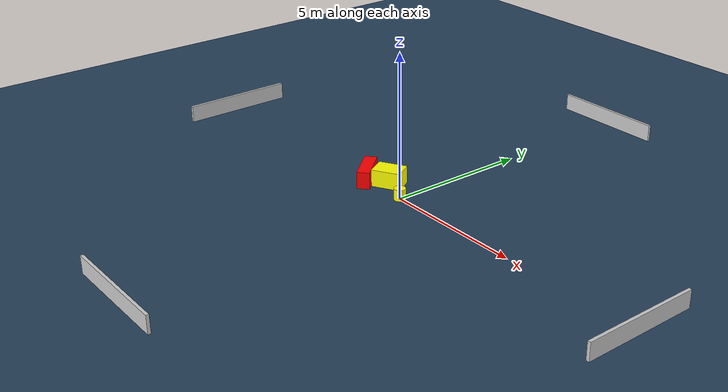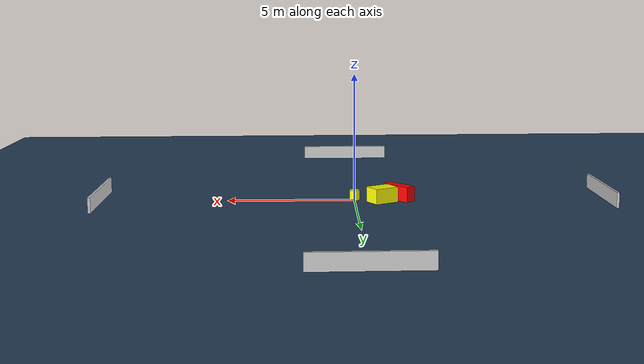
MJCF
<?xml version="1.0" ?>
<mujoco model="generated_environment">
  <option timestep="0.01" integrator="RK4" cone="elliptic"/>
  <default>
    <geom density="1"/>
  </default>
  <asset>
    <texture builtin="gradient" height="3072" name="skybox" rgb1="0.3 0.5 0.7" rgb2="0 0 0" type="skybox" width="512"/>
    <texture builtin="checker" height="300" name="groundplane" rgb1="0.2 0.3 0.4" rgb2="0.1 0.2 0.3" type="2d" width="300"/>
    <material name="groundplane" reflectance="0.2" texrepeat="5 5" texture="groundplane"/>
  </asset>
  <worldbody>
    <light dir="0 0 -1" directional="true" pos="0 0 1.5"/>
    <geom condim="3" friction="0.5 0.005 0.001" material="groundplane" name="floor" pos="0 0 0" size="0 0 0.05" type="plane"/>
    <body name="walls">
      <geom name="wall_1" condim="4" pos="-10.0 0.0 0.3" rgba="0.800000011920929 0.800000011920929 0.800000011920929 1.0" size="0.05 2.0 0.3" type="box"/>
      <geom name="wall_2" condim="4" pos="10.0 0.0 0.3" rgba="0.800000011920929 0.800000011920929 0.800000011920929 1.0" size="0.05 2.0 0.3" type="box"/>
      <geom name="wall_3" condim="4" pos="0.0 -10.0 0.3" rgba="0.800000011920929 0.800000011920929 0.800000011920929 1.0" size="2.0 0.05 0.3" type="box"/>
      <geom name="wall_4" condim="4" pos="0.0 10.0 0.3" rgba="0.800000011920929 0.800000011920929 0.800000011920929 1.0" size="2.0 0.05 0.3" type="box"/>
    </body>
    <body name="robot">
      <joint name="joint_x" type="slide" pos="0 0 0" axis="1 0 0"/>
      <joint name="joint_y" type="slide" pos="0 0 0" axis="0 1 0"/>
      <geom name="robot" type="cylinder" pos="0.0 0.0 0.2" size="0.2 0.2 0.0" mass="5.0" friction="1.0 0.005 0.0001" condim="4" rgba="1.0 1.0 0.0 1.0"/>
    </body>
    <body name="obstacle_1_movable">
      <geom name="obstacle_1_movable" condim="4" pos="-1.0785294753451373 0.42299186234215597 0.3" euler="0 0 29.45582336459998" friction="0.0 0.005 0.001" rgba="1.0 1.0 0.0 1.0" size="0.5016112234487629 0.35850883116889687 0.3" type="box" mass="0.1"/>
      <joint type="free"/>
    </body>
    <body name="obstacle_2_static">
      <geom name="obstacle_2_static" condim="4" pos="-1.766136525128595 0.013908621979758928 0.3" euler="0 0 41.04161654857452" friction="0.0 0.005 0.001" rgba="1.0 0.0 0.0 1.0" size="0.2159733232863663 0.6556992722573654 0.3" type="box"/>
    </body>
  </worldbody>
  <actuator>
    <motor name="actuator_x" joint="joint_x" gear="1" ctrlrange="-1 1"/>
    <motor name="actuator_y" joint="joint_y" gear="1" ctrlrange="-1 1"/>
  </actuator>
</mujoco>
